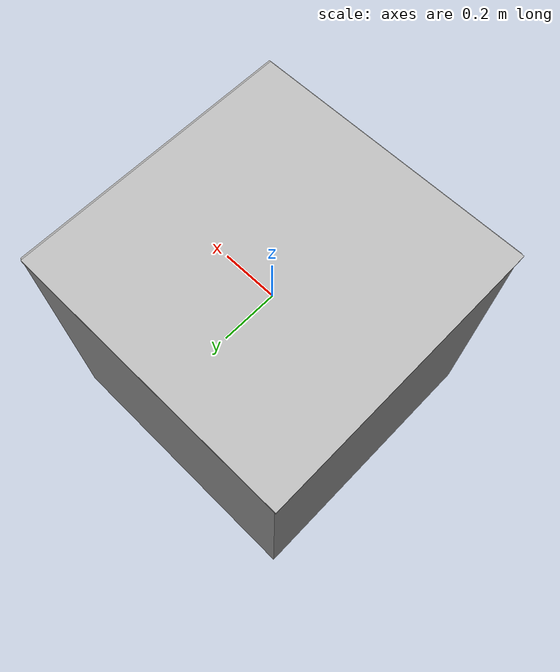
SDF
<?xml version='1.0'?>
<sdf version='1.6'>
  <model name='model_for_robot'>
    <link name='link_0'>
      <pose frame=''>0.004358 -0.001949 -0.249298 0 -0 0</pose>
      <inertial>
        <mass>1</mass>
        <inertia>
          <ixx>0.166667</ixx>
          <ixy>0</ixy>
          <ixz>0</ixz>
          <iyy>0.166667</iyy>
          <iyz>0</iyz>
          <izz>0.166667</izz>
        </inertia>
      </inertial>
      <visual name='visual'>
        <pose frame=''>0 0 0 0 -0 0</pose>
        <geometry>
          <box>
            <size>1 1 1</size>
          </box>
        </geometry>
        <material>
          <lighting>1</lighting>
          <script>
            <uri>file://media/materials/scripts/gazebo.material</uri>
            <name>Gazebo/Grey</name>
          </script>
          <ambient>0.3 0.3 0.3 1</ambient>
          <diffuse>0.7 0.7 0.7 1</diffuse>
          <specular>0.01 0.01 0.01 1</specular>
          <emissive>0 0 0 1</emissive>
        </material>
        <cast_shadows>1</cast_shadows>
        <transparency>0</transparency>
      </visual>
      <collision name='collision'>
        <laser_retro>0</laser_retro>
        <max_contacts>10</max_contacts>
        <pose frame=''>0 0 0 0 -0 0</pose>
        <geometry>
          <box>
            <size>1 1 1</size>
          </box>
        </geometry>
        <surface>
          <friction>
            <ode>
              <mu>1</mu>
              <mu2>1</mu2>
              <fdir1>0 0 0</fdir1>
              <slip1>0</slip1>
              <slip2>0</slip2>
            </ode>
            <torsional>
              <coefficient>1</coefficient>
              <patch_radius>0</patch_radius>
              <surface_radius>0</surface_radius>
              <use_patch_radius>1</use_patch_radius>
              <ode>
                <slip>0</slip>
              </ode>
            </torsional>
          </friction>
          <bounce>
            <restitution_coefficient>0</restitution_coefficient>
            <threshold>1e+06</threshold>
          </bounce>
          <contact>
            <collide_without_contact>0</collide_without_contact>
            <collide_without_contact_bitmask>1</collide_without_contact_bitmask>
            <collide_bitmask>1</collide_bitmask>
            <ode>
              <soft_cfm>0</soft_cfm>
              <soft_erp>0.2</soft_erp>
              <kp>1e+13</kp>
              <kd>1</kd>
              <max_vel>0.01</max_vel>
              <min_depth>0</min_depth>
            </ode>
            <bullet>
              <split_impulse>1</split_impulse>
              <split_impulse_penetration_threshold>-0.01</split_impulse_penetration_threshold>
              <soft_cfm>0</soft_cfm>
              <soft_erp>0.2</soft_erp>
              <kp>1e+13</kp>
              <kd>1</kd>
            </bullet>
          </contact>
        </surface>
      </collision>
    </link>
    <model name='test2'>
      <link name='link_0'>
        <pose frame=''>0 0 0 0 -0 0</pose>
        <inertial>
          <mass>0.00962162</mass>
          <inertia>
            <ixx>0.000801877</ixx>
            <ixy>0</ixy>
            <ixz>0</ixz>
            <iyy>0.000801877</iyy>
            <iyz>0</iyz>
            <izz>0.00160361</izz>
          </inertia>
          <pose frame=''>0 0 0 0 -0 0</pose>
        </inertial>
        <visual name='visual'>
          <pose frame=''>0 0 0 0 -0 0</pose>
          <geometry>
            <box>
              <size>1 1 0.009624</size>
            </box>
          </geometry>
          <material>
            <lighting>1</lighting>
            <script>
              <uri>model://test2/materials/scripts</uri>
              <uri>model://test2/materials/textures</uri>
              <name>test2/Diffuse</name>
            </script>
            <ambient>0.3 0.3 0.3 1</ambient>
            <diffuse>0.7 0.7 0.7 1</diffuse>
            <specular>0.01 0.01 0.01 1</specular>
            <emissive>0 0 0 1</emissive>
          </material>
          <cast_shadows>1</cast_shadows>
          <transparency>0</transparency>
        </visual>
        <collision name='collision'>
          <laser_retro>0</laser_retro>
          <max_contacts>10</max_contacts>
          <pose frame=''>0 0 0 0 -0 0</pose>
          <geometry>
            <box>
              <size>1 1 0.009624</size>
            </box>
          </geometry>
          <surface>
            <friction>
              <ode>
                <mu>1</mu>
                <mu2>1</mu2>
                <fdir1>0 0 0</fdir1>
                <slip1>0</slip1>
                <slip2>0</slip2>
              </ode>
              <torsional>
                <coefficient>1</coefficient>
                <patch_radius>0</patch_radius>
                <surface_radius>0</surface_radius>
                <use_patch_radius>1</use_patch_radius>
                <ode>
                  <slip>0</slip>
                </ode>
              </torsional>
            </friction>
            <bounce>
              <restitution_coefficient>0</restitution_coefficient>
              <threshold>1e+06</threshold>
            </bounce>
            <contact>
              <collide_without_contact>0</collide_without_contact>
              <collide_without_contact_bitmask>1</collide_without_contact_bitmask>
              <collide_bitmask>1</collide_bitmask>
              <ode>
                <soft_cfm>0</soft_cfm>
                <soft_erp>0.2</soft_erp>
                <kp>1e+13</kp>
                <kd>1</kd>
                <max_vel>0.01</max_vel>
                <min_depth>0</min_depth>
              </ode>
              <bullet>
                <split_impulse>1</split_impulse>
                <split_impulse_penetration_threshold>-0.01</split_impulse_penetration_threshold>
                <soft_cfm>0</soft_cfm>
                <soft_erp>0.2</soft_erp>
                <kp>1e+13</kp>
                <kd>1</kd>
              </bullet>
            </contact>
          </surface>
        </collision>
      </link>
      <static>0</static>
      <allow_auto_disable>1</allow_auto_disable>
      <pose frame=''>-0.004358 0.001948 0.249296 0 -0 0</pose>
    </model>
    <static>0</static>
    <allow_auto_disable>1</allow_auto_disable>
  </model>
</sdf>
